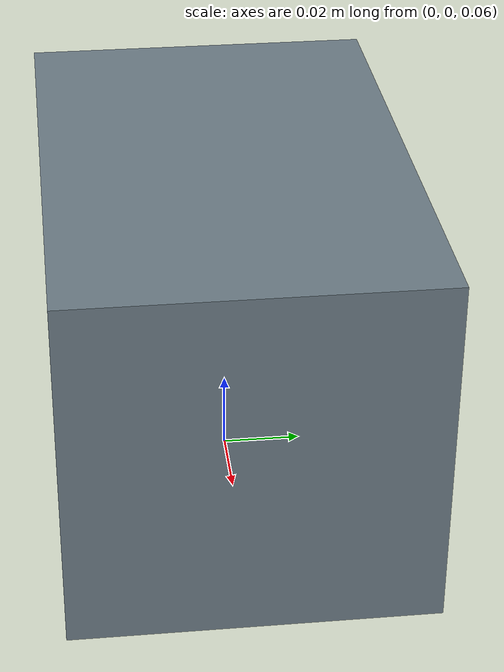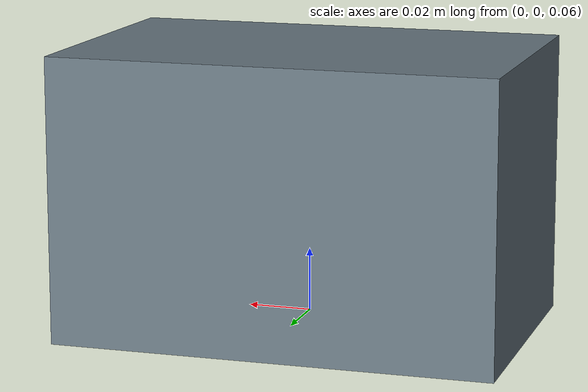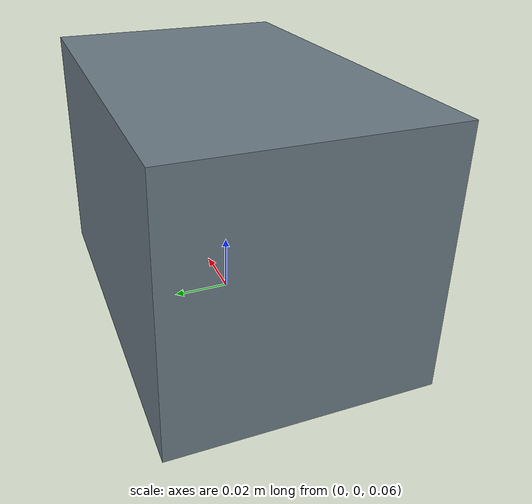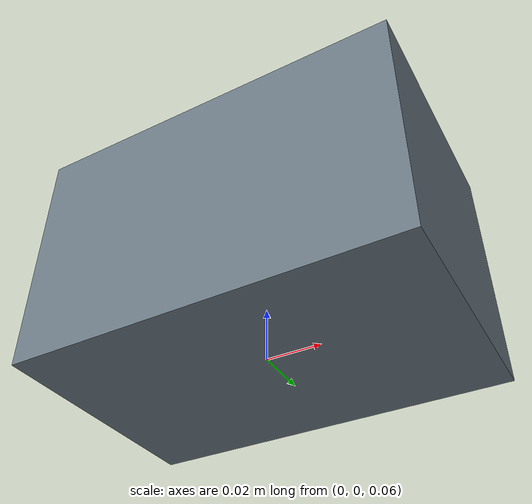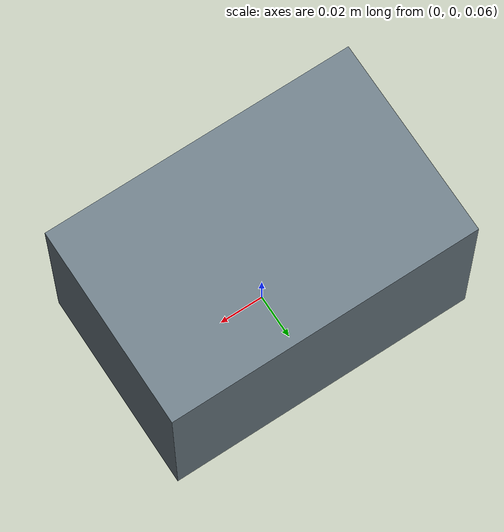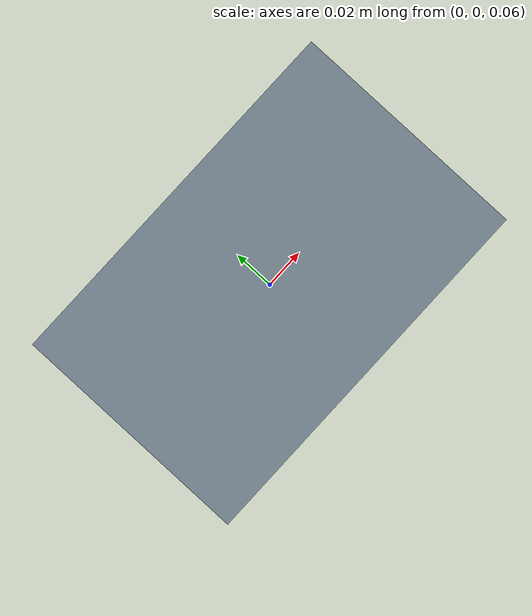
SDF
<?xml version="1.0"?>
<sdf version="1.9">
  <model name="room315_vla_payload_medium_box">
    <static>false</static>
    <link name="payload_link">
      <kinematic>true</kinematic>
      <gravity>false</gravity>
      <visual name="medium_box_body">
        <pose>0 0 0.100 0 0 0</pose>
        <geometry><box><size>0.140 0.090 0.090</size></box></geometry>
        <material><ambient>0.42 0.48 0.52 1</ambient><diffuse>0.42 0.48 0.52 1</diffuse><specular>0.10 0.10 0.10 1</specular></material>
      </visual>
      <collision name="medium_box_collision">
        <pose>0 0 0.100 0 0 0</pose>
        <geometry><box><size>0.140 0.090 0.090</size></box></geometry>
        <surface><contact><collide_bitmask>0x0000</collide_bitmask></contact></surface>
      </collision>
    </link>
  </model>
</sdf>
